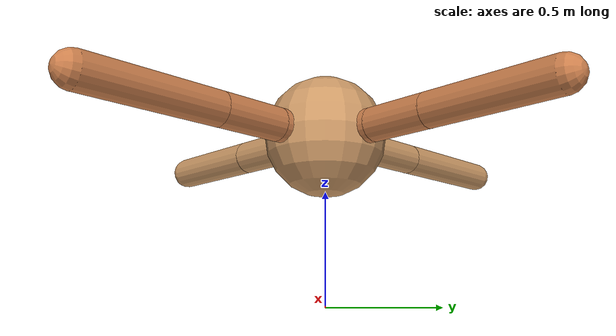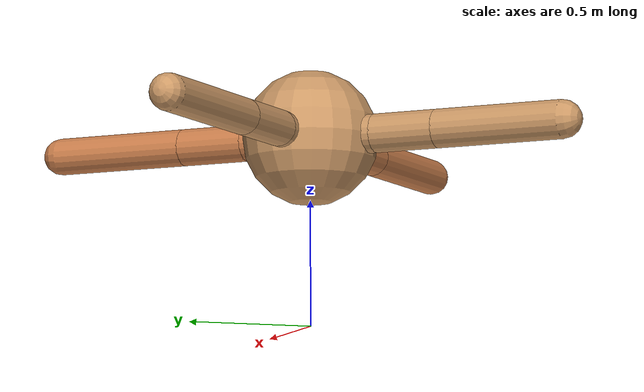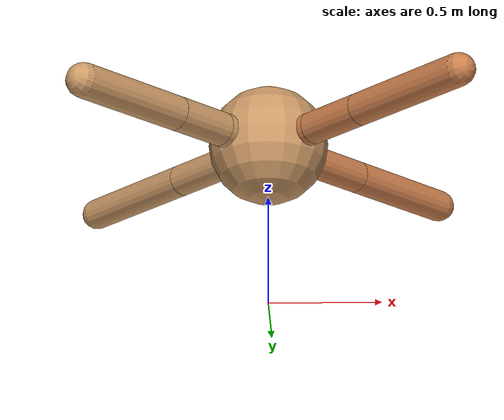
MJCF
<?xml version="1.0" ?>
<mujoco model="ant">

	<compiler angle="degree" coordinate="local" inertiafromgeom="true"/>

	<option integrator="RK4" timestep="0.01"/>

	<custom>

		<numeric data="0.0 0.0 0.55 1.0 0.0 0.0 0.0 0.0 1.0 0.0 -1.0 0.0 -1.0 0.0 1.0" name="init_qpos"/>

	</custom>

	<default>

		<joint armature="1" damping="1" limited="true"/>

		<geom conaffinity="0" condim="3" density="5.0" friction="1.5 0.1 0.1" margin="0.01" rgba="0.8 0.6 0.4 1"/>

	</default>

	<worldbody>

		<body name="torso" pos="0 0 0.75">

			<geom name="torso_geom" pos="0 0 0" size="0.2698521759649433" type="sphere"/>

			<!--joint armature="0" damping="0" limited="false" margin="0.01" name="root" pos="0 0 0" type="free"/-->

			<body name="front_left_leg" pos="0 0 0">

				<geom fromto="0 0 0 0.2 0.2 0" name="aux_1_geom" size="0.07368542850597551" type="capsule" rgba=".8 .5 .3 1"/>

				<body name="aux_1" pos="0.2 0.2 0">

					<joint axis="0 0 1" name="hip_1" pos="0.0 0.0 0.0" range="-40 40" type="hinge"/>

					<geom fromto="0 0 0 0.1981585171903181 0.1981585171903181 0" name="left_leg_geom" size="0.07368542850597551" type="capsule" rgba=".8 .5 .3 1"/>

					<body pos="0.1981585171903181 0.1981585171903181 0" name="front_left_foot">

						<joint axis="-1 1 0" name="ankle_1" pos="0.0 0.0 0.0" range="30 100" type="hinge"/>

						<geom fromto="0 0 0 0.3963170343806362 0.3963170343806362 0" name="left_ankle_geom" size="0.07368542850597551" type="capsule" rgba=".8 .5 .3 1"/>

					</body>

				</body>

			</body>

			<body name="front_right_leg" pos="0 0 0">

				<geom fromto="0 0 0 -0.2 0.2 0" name="aux_2_geom" size="0.07227902898532959" type="capsule"/>

				<body name="aux_2" pos="-0.2 0.2 0">

					<joint axis="0 0 1" name="hip_2" pos="0.0 0.0 0.0" range="-40 40" type="hinge"/>

					<geom fromto="0 0 0 -0.218476250572328 0.218476250572328 0" name="right_leg_geom" size="0.07227902898532959" type="capsule"/>

					<body pos="-0.218476250572328 0.218476250572328 0" name="front_right_foot">

						<joint axis="1 1 0" name="ankle_2" pos="0.0 0.0 0.0" range="-100 -30" type="hinge"/>

						<geom fromto="0 0 0 -0.436952501144656 0.436952501144656 0" name="right_ankle_geom" size="0.07227902898532959" type="capsule"/>

					</body>

				</body>

			</body>

			<body name="left_back_leg" pos="0 0 0">

				<geom fromto="0 0 0 -0.2 -0.2 0" name="aux_3_geom" size="0.0767090934065717" type="capsule"/>

				<body name="aux_3" pos="-0.2 -0.2 0">

					<joint axis="0 0 1" name="hip_3" pos="0.0 0.0 0.0" range="-40 40" type="hinge"/>

					<geom fromto="0 0 0 -0.187166240192298 -0.187166240192298 0" name="back_leg_geom" size="0.0767090934065717" type="capsule"/>

					<body pos="-0.187166240192298 -0.187166240192298 0" name="left_back_foot">

						<joint axis="-1 1 0" name="ankle_3" pos="0.0 0.0 0.0" range="-100 -30" type="hinge"/>

						<geom fromto="0 0 0 -0.374332480384596 -0.374332480384596 0" name="third_ankle_geom" size="0.0767090934065717" type="capsule"/>

					</body>

				</body>

			</body>

			<body name="right_back_leg" pos="0 0 0">

				<geom fromto="0 0 0 0.2 -0.2 0" name="aux_4_geom" size="0.07254606681367026" type="capsule" rgba=".8 .5 .3 1"/>

				<body name="aux_4" pos="0.2 -0.2 0">

					<joint axis="0 0 1" name="hip_4" pos="0.0 0.0 0.0" range="-40 40" type="hinge"/>

					<geom fromto="0 0 0 0.20797946954219354 -0.20797946954219354 0" name="rightback_leg_geom" size="0.07254606681367026" type="capsule" rgba=".8 .5 .3 1"/>

					<body pos="0.20797946954219354 -0.20797946954219354 0" name="right_back_foot">

						<joint axis="1 1 0" name="ankle_4" pos="0.0 0.0 0.0" range="30 100" type="hinge"/>

						<geom fromto="0 0 0 0.4159589390843871 -0.4159589390843871 0" name="fourth_ankle_geom" size="0.07254606681367026" type="capsule" rgba=".8 .5 .3 1"/>

					</body>

				</body>

			</body>

		</body>

	</worldbody>

	<actuator>

		<motor ctrllimited="true" ctrlrange="-1.0 1.0" joint="hip_4" gear="150"/>

		<motor ctrllimited="true" ctrlrange="-1.0 1.0" joint="ankle_4" gear="150"/>

		<motor ctrllimited="true" ctrlrange="-1.0 1.0" joint="hip_1" gear="150"/>

		<motor ctrllimited="true" ctrlrange="-1.0 1.0" joint="ankle_1" gear="150"/>

		<motor ctrllimited="true" ctrlrange="-1.0 1.0" joint="hip_2" gear="150"/>

		<motor ctrllimited="true" ctrlrange="-1.0 1.0" joint="ankle_2" gear="150"/>

		<motor ctrllimited="true" ctrlrange="-1.0 1.0" joint="hip_3" gear="150"/>

		<motor ctrllimited="true" ctrlrange="-1.0 1.0" joint="ankle_3" gear="150"/>

	</actuator>

</mujoco>
